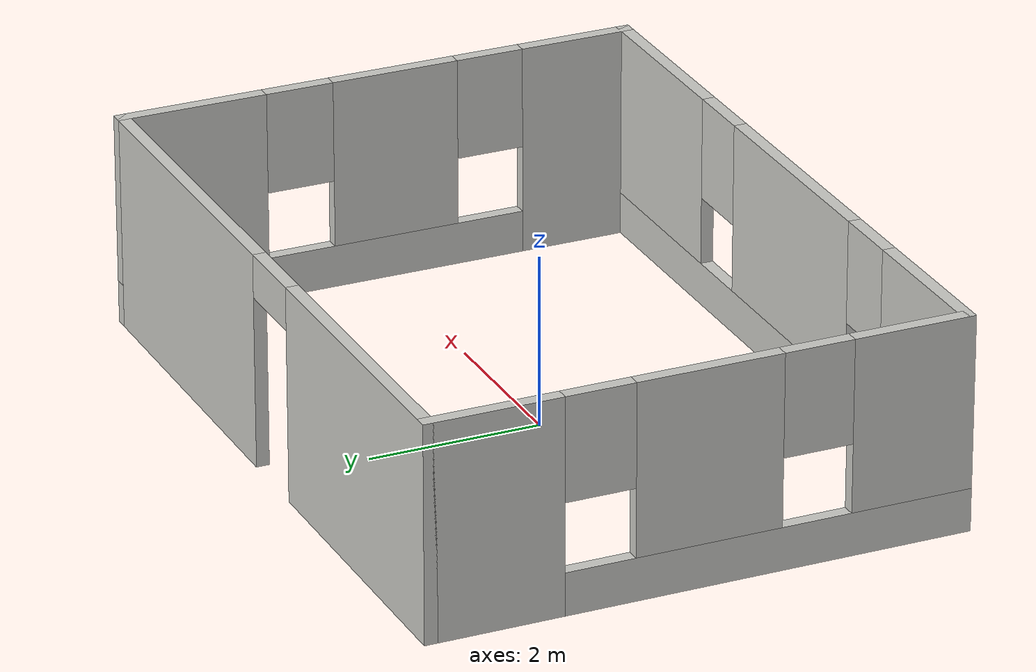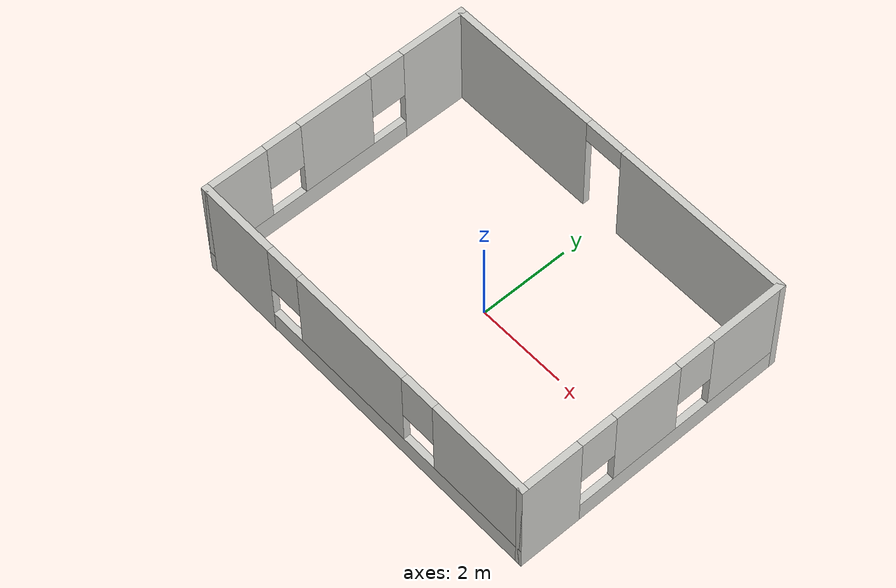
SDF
<?xml version='1.0'?>
<sdf version='1.7'>
  <model name='simple_room'>
    <pose>0.095692 0.050068 0 0 -0 0</pose>
    <link name='Wall_10'>
      <pose>0 3.05 0 0 -0 3.14159</pose>
      <visual name='Wall_10_Visual_0'>
        <pose>-2.24017 0 1.25 0 -0 0</pose>
        <geometry>
          <box>
            <size>4.01967 0.15 2.5</size>
          </box>
        </geometry>
        <material>
          <script>
            <uri>file://media/materials/scripts/gazebo.material</uri>
            <name>Gazebo/CeilingTiled</name>
          </script>
          <ambient>1 1 1 1</ambient>
        </material>
        <meta>
          <layer>0</layer>
        </meta>
      </visual>
      <collision name='Wall_10_Collision_0'>
        <geometry>
          <box>
            <size>4.01967 0.15 2.5</size>
          </box>
        </geometry>
        <pose>-2.24017 0 1.25 0 -0 0</pose>
      </collision>
      <visual name='Wall_10_Visual_1'>
        <pose>2.45983 0 1.25 0 -0 0</pose>
        <geometry>
          <box>
            <size>3.58033 0.15 2.5</size>
          </box>
        </geometry>
        <material>
          <script>
            <uri>file://media/materials/scripts/gazebo.material</uri>
            <name>Gazebo/CeilingTiled</name>
          </script>
          <ambient>1 1 1 1</ambient>
        </material>
        <meta>
          <layer>0</layer>
        </meta>
      </visual>
      <collision name='Wall_10_Collision_1'>
        <geometry>
          <box>
            <size>3.58033 0.15 2.5</size>
          </box>
        </geometry>
        <pose>2.45983 0 1.25 0 -0 0</pose>
      </collision>
      <visual name='Wall_10_Visual_2'>
        <pose>0.219666 0 2.25 0 -0 0</pose>
        <geometry>
          <box>
            <size>0.9 0.15 0.5</size>
          </box>
        </geometry>
        <material>
          <script>
            <uri>file://media/materials/scripts/gazebo.material</uri>
            <name>Gazebo/CeilingTiled</name>
          </script>
          <ambient>1 1 1 1</ambient>
        </material>
        <meta>
          <layer>0</layer>
        </meta>
      </visual>
      <collision name='Wall_10_Collision_2'>
        <geometry>
          <box>
            <size>0.9 0.15 0.5</size>
          </box>
        </geometry>
        <pose>0.219666 0 2.25 0 -0 0</pose>
      </collision>
    </link>
    <link name='Wall_7'>
      <pose>-4.175 0 0 0 -0 -1.5708</pose>
      <visual name='Wall_7_Visual_0'>
        <pose>-2.33914 0 1.25 0 -0 0</pose>
        <geometry>
          <box>
            <size>1.57171 0.15 2.5</size>
          </box>
        </geometry>
        <material>
          <script>
            <uri>file://media/materials/scripts/gazebo.material</uri>
            <name>Gazebo/CeilingTiled</name>
          </script>
          <ambient>1 1 1 1</ambient>
        </material>
        <meta>
          <layer>0</layer>
        </meta>
      </visual>
      <collision name='Wall_7_Collision_0'>
        <geometry>
          <box>
            <size>1.57171 0.15 2.5</size>
          </box>
        </geometry>
        <pose>-2.33914 0 1.25 0 -0 0</pose>
      </collision>
      <visual name='Wall_7_Visual_1'>
        <pose>0.785855 0 0.25 0 -0 0</pose>
        <geometry>
          <box>
            <size>4.67829 0.15 0.5</size>
          </box>
        </geometry>
        <material>
          <script>
            <uri>file://media/materials/scripts/gazebo.material</uri>
            <name>Gazebo/CeilingTiled</name>
          </script>
          <ambient>1 1 1 1</ambient>
        </material>
        <meta>
          <layer>0</layer>
        </meta>
      </visual>
      <collision name='Wall_7_Collision_1'>
        <geometry>
          <box>
            <size>4.67829 0.15 0.5</size>
          </box>
        </geometry>
        <pose>0.785855 0 0.25 0 -0 0</pose>
      </collision>
      <visual name='Wall_7_Visual_2'>
        <pose>0.084197 0 1.5 0 -0 0</pose>
        <geometry>
          <box>
            <size>1.67498 0.15 2</size>
          </box>
        </geometry>
        <material>
          <script>
            <uri>file://media/materials/scripts/gazebo.material</uri>
            <name>Gazebo/CeilingTiled</name>
          </script>
          <ambient>1 1 1 1</ambient>
        </material>
        <meta>
          <layer>0</layer>
        </meta>
      </visual>
      <collision name='Wall_7_Collision_2'>
        <geometry>
          <box>
            <size>1.67498 0.15 2</size>
          </box>
        </geometry>
        <pose>0.084197 0 1.5 0 -0 0</pose>
      </collision>
      <visual name='Wall_7_Visual_3'>
        <pose>2.42334 0 1.5 0 -0 0</pose>
        <geometry>
          <box>
            <size>1.40332 0.15 2</size>
          </box>
        </geometry>
        <material>
          <script>
            <uri>file://media/materials/scripts/gazebo.material</uri>
            <name>Gazebo/CeilingTiled</name>
          </script>
          <ambient>1 1 1 1</ambient>
        </material>
        <meta>
          <layer>0</layer>
        </meta>
      </visual>
      <collision name='Wall_7_Collision_3'>
        <geometry>
          <box>
            <size>1.40332 0.15 2</size>
          </box>
        </geometry>
        <pose>2.42334 0 1.5 0 -0 0</pose>
      </collision>
      <visual name='Wall_7_Visual_4'>
        <pose>-1.15329 0 1.9 0 -0 0</pose>
        <geometry>
          <box>
            <size>0.8 0.15 1.2</size>
          </box>
        </geometry>
        <material>
          <script>
            <uri>file://media/materials/scripts/gazebo.material</uri>
            <name>Gazebo/CeilingTiled</name>
          </script>
          <ambient>1 1 1 1</ambient>
        </material>
        <meta>
          <layer>0</layer>
        </meta>
      </visual>
      <collision name='Wall_7_Collision_4'>
        <geometry>
          <box>
            <size>0.8 0.15 1.2</size>
          </box>
        </geometry>
        <pose>-1.15329 0 1.9 0 -0 0</pose>
      </collision>
      <visual name='Wall_7_Visual_5'>
        <pose>1.32168 0 1.9 0 -0 0</pose>
        <geometry>
          <box>
            <size>0.8 0.15 1.2</size>
          </box>
        </geometry>
        <material>
          <script>
            <uri>file://media/materials/scripts/gazebo.material</uri>
            <name>Gazebo/CeilingTiled</name>
          </script>
          <ambient>1 1 1 1</ambient>
        </material>
        <meta>
          <layer>0</layer>
        </meta>
      </visual>
      <collision name='Wall_7_Collision_5'>
        <geometry>
          <box>
            <size>0.8 0.15 1.2</size>
          </box>
        </geometry>
        <pose>1.32168 0 1.9 0 -0 0</pose>
      </collision>
    </link>
    <link name='Wall_8'>
      <pose>0 -3.05 0 0 -0 0</pose>
      <visual name='Wall_8_Visual_0'>
        <pose>-3.32536 0 1.25 0 -0 0</pose>
        <geometry>
          <box>
            <size>1.84928 0.15 2.5</size>
          </box>
        </geometry>
        <material>
          <script>
            <uri>file://media/materials/scripts/gazebo.material</uri>
            <name>Gazebo/CeilingTiled</name>
          </script>
          <ambient>1 1 1 1</ambient>
        </material>
        <meta>
          <layer>0</layer>
        </meta>
      </visual>
      <collision name='Wall_8_Collision_0'>
        <geometry>
          <box>
            <size>1.84928 0.15 2.5</size>
          </box>
        </geometry>
        <pose>-3.32536 0 1.25 0 -0 0</pose>
      </collision>
      <visual name='Wall_8_Visual_1'>
        <pose>0.924639 0 0.25 0 -0 0</pose>
        <geometry>
          <box>
            <size>6.65072 0.15 0.5</size>
          </box>
        </geometry>
        <material>
          <script>
            <uri>file://media/materials/scripts/gazebo.material</uri>
            <name>Gazebo/CeilingTiled</name>
          </script>
          <ambient>1 1 1 1</ambient>
        </material>
        <meta>
          <layer>0</layer>
        </meta>
      </visual>
      <collision name='Wall_8_Collision_1'>
        <geometry>
          <box>
            <size>6.65072 0.15 0.5</size>
          </box>
        </geometry>
        <pose>0.924639 0 0.25 0 -0 0</pose>
      </collision>
      <visual name='Wall_8_Visual_2'>
        <pose>-0.208101 0 1.5 0 -0 0</pose>
        <geometry>
          <box>
            <size>2.78524 0.15 2</size>
          </box>
        </geometry>
        <material>
          <script>
            <uri>file://media/materials/scripts/gazebo.material</uri>
            <name>Gazebo/CeilingTiled</name>
          </script>
          <ambient>1 1 1 1</ambient>
        </material>
        <meta>
          <layer>0</layer>
        </meta>
      </visual>
      <collision name='Wall_8_Collision_2'>
        <geometry>
          <box>
            <size>2.78524 0.15 2</size>
          </box>
        </geometry>
        <pose>-0.208101 0 1.5 0 -0 0</pose>
      </collision>
      <visual name='Wall_8_Visual_3'>
        <pose>3.11726 0 1.5 0 -0 0</pose>
        <geometry>
          <box>
            <size>2.26548 0.15 2</size>
          </box>
        </geometry>
        <material>
          <script>
            <uri>file://media/materials/scripts/gazebo.material</uri>
            <name>Gazebo/CeilingTiled</name>
          </script>
          <ambient>1 1 1 1</ambient>
        </material>
        <meta>
          <layer>0</layer>
        </meta>
      </visual>
      <collision name='Wall_8_Collision_3'>
        <geometry>
          <box>
            <size>2.26548 0.15 2</size>
          </box>
        </geometry>
        <pose>3.11726 0 1.5 0 -0 0</pose>
      </collision>
      <visual name='Wall_8_Visual_4'>
        <pose>-2.00072 0 1.9 0 -0 0</pose>
        <geometry>
          <box>
            <size>0.8 0.15 1.2</size>
          </box>
        </geometry>
        <material>
          <script>
            <uri>file://media/materials/scripts/gazebo.material</uri>
            <name>Gazebo/CeilingTiled</name>
          </script>
          <ambient>1 1 1 1</ambient>
        </material>
        <meta>
          <layer>0</layer>
        </meta>
      </visual>
      <collision name='Wall_8_Collision_4'>
        <geometry>
          <box>
            <size>0.8 0.15 1.2</size>
          </box>
        </geometry>
        <pose>-2.00072 0 1.9 0 -0 0</pose>
      </collision>
      <visual name='Wall_8_Visual_5'>
        <pose>1.58452 0 1.9 0 -0 0</pose>
        <geometry>
          <box>
            <size>0.8 0.15 1.2</size>
          </box>
        </geometry>
        <material>
          <script>
            <uri>file://media/materials/scripts/gazebo.material</uri>
            <name>Gazebo/CeilingTiled</name>
          </script>
          <ambient>1 1 1 1</ambient>
        </material>
        <meta>
          <layer>0</layer>
        </meta>
      </visual>
      <collision name='Wall_8_Collision_5'>
        <geometry>
          <box>
            <size>0.8 0.15 1.2</size>
          </box>
        </geometry>
        <pose>1.58452 0 1.9 0 -0 0</pose>
      </collision>
    </link>
    <link name='Wall_9'>
      <pose>4.175 0 0 0 -0 1.5708</pose>
      <visual name='Wall_9_Visual_0'>
        <pose>-2.43491 0 1.25 0 -0 0</pose>
        <geometry>
          <box>
            <size>1.38018 0.15 2.5</size>
          </box>
        </geometry>
        <material>
          <script>
            <uri>file://media/materials/scripts/gazebo.material</uri>
            <name>Gazebo/CeilingTiled</name>
          </script>
          <ambient>1 1 1 1</ambient>
        </material>
        <meta>
          <layer>0</layer>
        </meta>
      </visual>
      <collision name='Wall_9_Collision_0'>
        <geometry>
          <box>
            <size>1.38018 0.15 2.5</size>
          </box>
        </geometry>
        <pose>-2.43491 0 1.25 0 -0 0</pose>
      </collision>
      <visual name='Wall_9_Visual_1'>
        <pose>0.690092 0 0.25 0 -0 0</pose>
        <geometry>
          <box>
            <size>4.86982 0.15 0.5</size>
          </box>
        </geometry>
        <material>
          <script>
            <uri>file://media/materials/scripts/gazebo.material</uri>
            <name>Gazebo/CeilingTiled</name>
          </script>
          <ambient>1 1 1 1</ambient>
        </material>
        <meta>
          <layer>0</layer>
        </meta>
      </visual>
      <collision name='Wall_9_Collision_1'>
        <geometry>
          <box>
            <size>4.86982 0.15 0.5</size>
          </box>
        </geometry>
        <pose>0.690092 0 0.25 0 -0 0</pose>
      </collision>
      <visual name='Wall_9_Visual_2'>
        <pose>-0.188285 0 1.5 0 -0 0</pose>
        <geometry>
          <box>
            <size>1.51306 0.15 2</size>
          </box>
        </geometry>
        <material>
          <script>
            <uri>file://media/materials/scripts/gazebo.material</uri>
            <name>Gazebo/CeilingTiled</name>
          </script>
          <ambient>1 1 1 1</ambient>
        </material>
        <meta>
          <layer>0</layer>
        </meta>
      </visual>
      <collision name='Wall_9_Collision_2'>
        <geometry>
          <box>
            <size>1.51306 0.15 2</size>
          </box>
        </geometry>
        <pose>-0.188285 0 1.5 0 -0 0</pose>
      </collision>
      <visual name='Wall_9_Visual_3'>
        <pose>2.24662 0 1.5 0 -0 0</pose>
        <geometry>
          <box>
            <size>1.75676 0.15 2</size>
          </box>
        </geometry>
        <material>
          <script>
            <uri>file://media/materials/scripts/gazebo.material</uri>
            <name>Gazebo/CeilingTiled</name>
          </script>
          <ambient>1 1 1 1</ambient>
        </material>
        <meta>
          <layer>0</layer>
        </meta>
      </visual>
      <collision name='Wall_9_Collision_3'>
        <geometry>
          <box>
            <size>1.75676 0.15 2</size>
          </box>
        </geometry>
        <pose>2.24662 0 1.5 0 -0 0</pose>
      </collision>
      <visual name='Wall_9_Visual_4'>
        <pose>-1.34482 0 1.9 0 -0 0</pose>
        <geometry>
          <box>
            <size>0.8 0.15 1.2</size>
          </box>
        </geometry>
        <material>
          <script>
            <uri>file://media/materials/scripts/gazebo.material</uri>
            <name>Gazebo/CeilingTiled</name>
          </script>
          <ambient>1 1 1 1</ambient>
        </material>
        <meta>
          <layer>0</layer>
        </meta>
      </visual>
      <collision name='Wall_9_Collision_4'>
        <geometry>
          <box>
            <size>0.8 0.15 1.2</size>
          </box>
        </geometry>
        <pose>-1.34482 0 1.9 0 -0 0</pose>
      </collision>
      <visual name='Wall_9_Visual_5'>
        <pose>0.968245 0 1.9 0 -0 0</pose>
        <geometry>
          <box>
            <size>0.8 0.15 1.2</size>
          </box>
        </geometry>
        <material>
          <script>
            <uri>file://media/materials/scripts/gazebo.material</uri>
            <name>Gazebo/CeilingTiled</name>
          </script>
          <ambient>1 1 1 1</ambient>
        </material>
        <meta>
          <layer>0</layer>
        </meta>
      </visual>
      <collision name='Wall_9_Collision_5'>
        <geometry>
          <box>
            <size>0.8 0.15 1.2</size>
          </box>
        </geometry>
        <pose>0.968245 0 1.9 0 -0 0</pose>
      </collision>
    </link>
    <static>1</static>
  </model>
</sdf>
